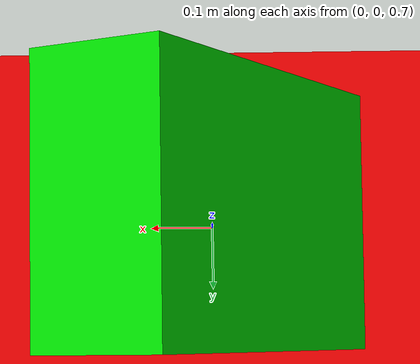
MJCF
<mujoco>
    <worldbody>
        <light diffuse="0.5 0.5 0.5" pos="0 0 3" dir="0 0 -1"/>
        <geom type="box" size="5 5 0.01" rgba=".9 0 0 1"/>
        <body pos="0 0 1" quat="0.965926 0 0.258819 0">
            <joint type="free"/>
            <geom type="box" size=".1 .2 .3" rgba="0  .9 0 1"/>
        </body>
    </worldbody>
</mujoco>
